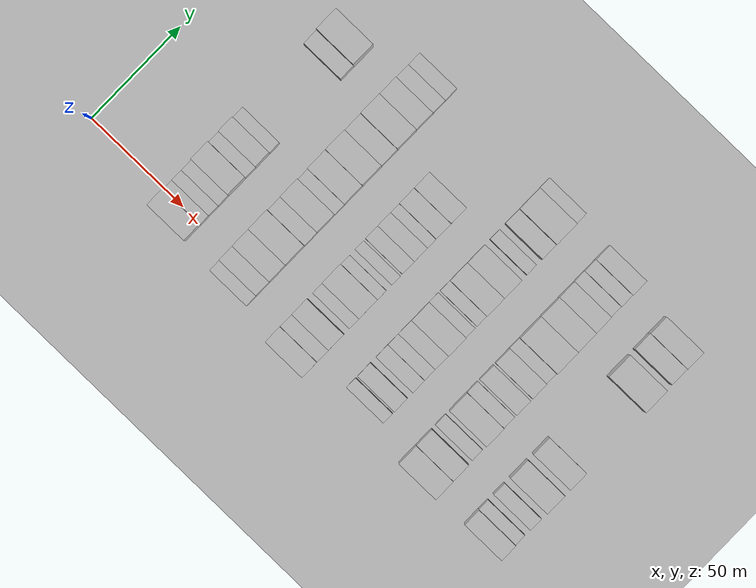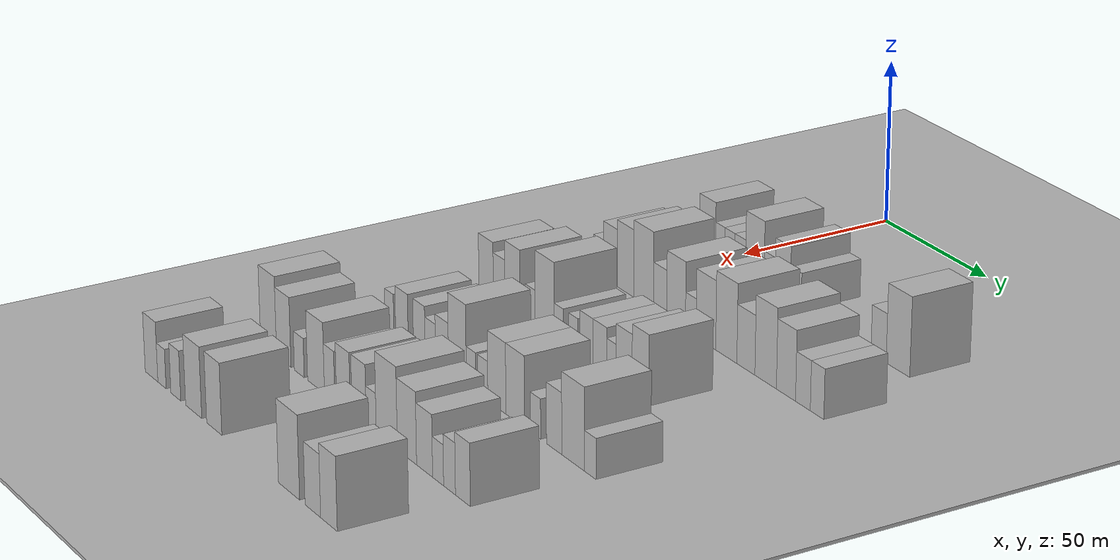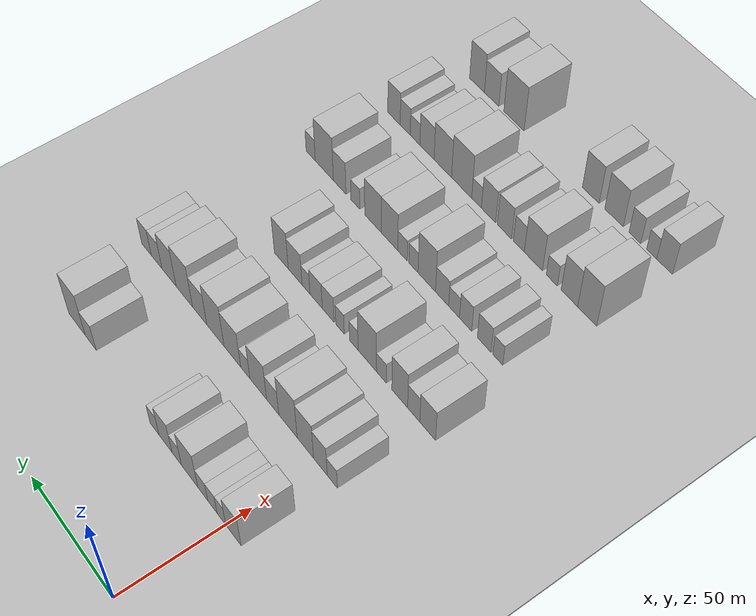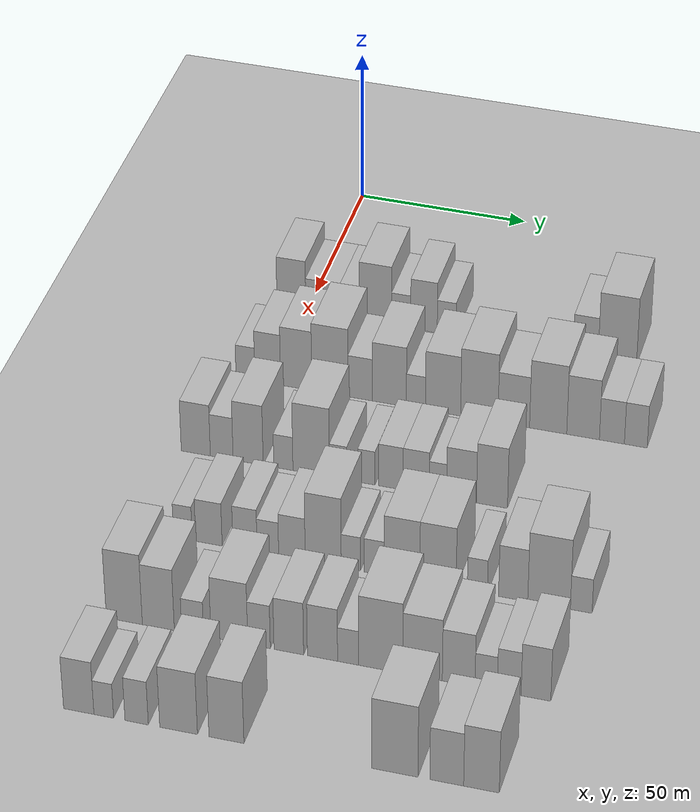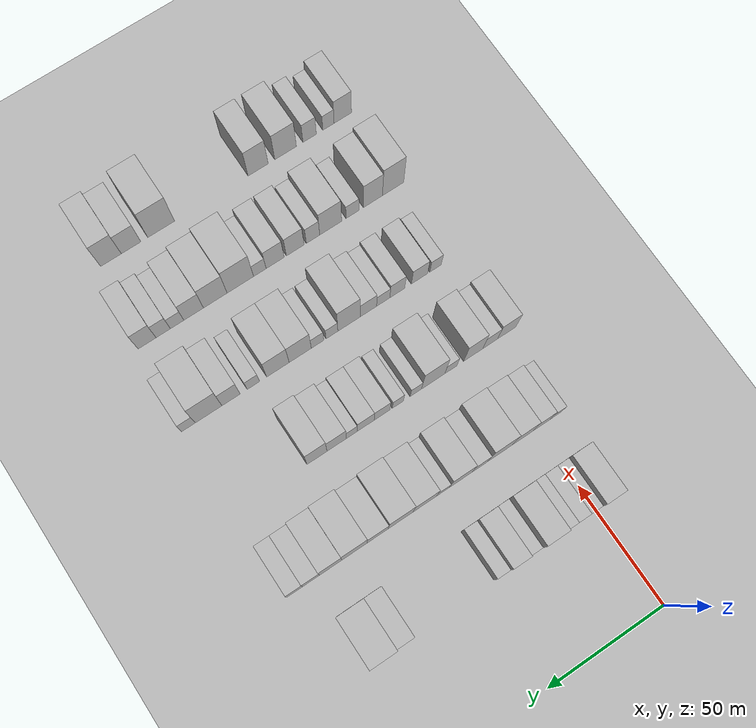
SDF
<sdf version="1.6">
 <world name="default">
  <include><name>ground_plane_1</name><uri>model://HANNAS_ground_plane</uri></include>
  <include>
   <name>ground_plane_2</name>
   <uri>model://HANNAS_ground_plane</uri>
   <pose>100 0 0  0 0 0</pose>
  </include>
  <model name="building_60">
   <static>1</static>
   <pose>50.0000 -4.5406 0 0.000000 0.000000 0.000000</pose>
   <link name="link">
    <pose>0 0 9.00 0 0 0</pose>
    <collision name="collision"><geometry><box><size>20.0000 8.6253 18.0000</size></box></geometry></collision>
    <visual name="visual">
     <cast_shadows>0</cast_shadows>
     <geometry><box><size>20.0000 8.6253 18.0000</size></box></geometry>
     <material>
      <script>
       <uri>model://HANNAS_wall/materials/scripts</uri>
       <uri>model://HANNAS_wall/materials/textures</uri>
       <name>vrc/HANNAS_wall</name>
      </script>
     </material>
    </visual>
   </link>
  </model>
  <model name="building_61">
   <static>1</static>
   <pose>50.0000 2.2006 0 0.000000 0.000000 0.000000</pose>
   <link name="link">
    <pose>0 0 6.00 0 0 0</pose>
    <collision name="collision"><geometry><box><size>20.0000 4.8570 12.0000</size></box></geometry></collision>
    <visual name="visual">
     <cast_shadows>0</cast_shadows>
     <geometry><box><size>20.0000 4.8570 12.0000</size></box></geometry>
     <material>
      <script>
       <uri>model://HANNAS_wall/materials/scripts</uri>
       <uri>model://HANNAS_wall/materials/textures</uri>
       <name>vrc/HANNAS_wall</name>
      </script>
     </material>
    </visual>
   </link>
  </model>
  <model name="building_62">
   <static>1</static>
   <pose>50.0000 7.3138 0 0.000000 0.000000 0.000000</pose>
   <link name="link">
    <pose>0 0 6.00 0 0 0</pose>
    <collision name="collision"><geometry><box><size>20.0000 5.3694 12.0000</size></box></geometry></collision>
    <visual name="visual">
     <cast_shadows>0</cast_shadows>
     <geometry><box><size>20.0000 5.3694 12.0000</size></box></geometry>
     <material>
      <script>
       <uri>model://HANNAS_wall/materials/scripts</uri>
       <uri>model://HANNAS_wall/materials/textures</uri>
       <name>vrc/HANNAS_wall</name>
      </script>
     </material>
    </visual>
   </link>
  </model>
  <model name="building_63">
   <static>1</static>
   <pose>50.0000 12.8486 0 0.000000 0.000000 0.000000</pose>
   <link name="link">
    <pose>0 0 6.00 0 0 0</pose>
    <collision name="collision"><geometry><box><size>20.0000 5.7001 12.0000</size></box></geometry></collision>
    <visual name="visual">
     <cast_shadows>0</cast_shadows>
     <geometry><box><size>20.0000 5.7001 12.0000</size></box></geometry>
     <material>
      <script>
       <uri>model://HANNAS_wall/materials/scripts</uri>
       <uri>model://HANNAS_wall/materials/textures</uri>
       <name>vrc/HANNAS_wall</name>
      </script>
     </material>
    </visual>
   </link>
  </model>
  <model name="building_64">
   <static>1</static>
   <pose>50.0000 20.5025 0 0.000000 0.000000 0.000000</pose>
   <link name="link">
    <pose>0 0 10.50 0 0 0</pose>
    <collision name="collision"><geometry><box><size>20.0000 9.6077 21.0000</size></box></geometry></collision>
    <visual name="visual">
     <cast_shadows>0</cast_shadows>
     <geometry><box><size>20.0000 9.6077 21.0000</size></box></geometry>
     <material>
      <script>
       <uri>model://HANNAS_wall/materials/scripts</uri>
       <uri>model://HANNAS_wall/materials/textures</uri>
       <name>vrc/HANNAS_wall</name>
      </script>
     </material>
    </visual>
   </link>
  </model>
  <model name="building_65">
   <static>1</static>
   <pose>50.0000 28.1299 0 0.000000 0.000000 0.000000</pose>
   <link name="link">
    <pose>0 0 6.00 0 0 0</pose>
    <collision name="collision"><geometry><box><size>20.0000 5.6471 12.0000</size></box></geometry></collision>
    <visual name="visual">
     <cast_shadows>0</cast_shadows>
     <geometry><box><size>20.0000 5.6471 12.0000</size></box></geometry>
     <material>
      <script>
       <uri>model://HANNAS_wall/materials/scripts</uri>
       <uri>model://HANNAS_wall/materials/textures</uri>
       <name>vrc/HANNAS_wall</name>
      </script>
     </material>
    </visual>
   </link>
  </model>
  <model name="building_66">
   <static>1</static>
   <pose>50.0000 34.8647 0 0.000000 0.000000 0.000000</pose>
   <link name="link">
    <pose>0 0 9.00 0 0 0</pose>
    <collision name="collision"><geometry><box><size>20.0000 7.8226 18.0000</size></box></geometry></collision>
    <visual name="visual">
     <cast_shadows>0</cast_shadows>
     <geometry><box><size>20.0000 7.8226 18.0000</size></box></geometry>
     <material>
      <script>
       <uri>model://HANNAS_wall/materials/scripts</uri>
       <uri>model://HANNAS_wall/materials/textures</uri>
       <name>vrc/HANNAS_wall</name>
      </script>
     </material>
    </visual>
   </link>
  </model>
  <model name="building_67">
   <static>1</static>
   <pose>50.0000 41.5274 0 0.000000 0.000000 0.000000</pose>
   <link name="link">
    <pose>0 0 6.00 0 0 0</pose>
    <collision name="collision"><geometry><box><size>20.0000 5.5028 12.0000</size></box></geometry></collision>
    <visual name="visual">
     <cast_shadows>0</cast_shadows>
     <geometry><box><size>20.0000 5.5028 12.0000</size></box></geometry>
     <material>
      <script>
       <uri>model://HANNAS_wall/materials/scripts</uri>
       <uri>model://HANNAS_wall/materials/textures</uri>
       <name>vrc/HANNAS_wall</name>
      </script>
     </material>
    </visual>
   </link>
  </model>
  <model name="building_68">
   <static>1</static>
   <pose>50.0000 82.0958 0 0.000000 0.000000 0.000000</pose>
   <link name="link">
    <pose>0 0 7.50 0 0 0</pose>
    <collision name="collision"><geometry><box><size>20.0000 7.2113 15.0000</size></box></geometry></collision>
    <visual name="visual">
     <cast_shadows>0</cast_shadows>
     <geometry><box><size>20.0000 7.2113 15.0000</size></box></geometry>
     <material>
      <script>
       <uri>model://HANNAS_wall/materials/scripts</uri>
       <uri>model://HANNAS_wall/materials/textures</uri>
       <name>vrc/HANNAS_wall</name>
      </script>
     </material>
    </visual>
   </link>
  </model>
  <model name="building_69">
   <static>1</static>
   <pose>50.0000 91.2356 0 0.000000 0.000000 0.000000</pose>
   <link name="link">
    <pose>0 0 12.00 0 0 0</pose>
    <collision name="collision"><geometry><box><size>20.0000 11.0683 24.0000</size></box></geometry></collision>
    <visual name="visual">
     <cast_shadows>0</cast_shadows>
     <geometry><box><size>20.0000 11.0683 24.0000</size></box></geometry>
     <material>
      <script>
       <uri>model://HANNAS_wall/materials/scripts</uri>
       <uri>model://HANNAS_wall/materials/textures</uri>
       <name>vrc/HANNAS_wall</name>
      </script>
     </material>
    </visual>
   </link>
  </model>
  <model name="building_171">
   <static>1</static>
   <pose>85.0000 -7.6000 0 0.000000 0.000000 0.000000</pose>
   <link name="link">
    <pose>0 0 6.00 0 0 0</pose>
    <collision name="collision"><geometry><box><size>20.0000 5.5117 12.0000</size></box></geometry></collision>
    <visual name="visual">
     <cast_shadows>0</cast_shadows>
     <geometry><box><size>20.0000 5.5117 12.0000</size></box></geometry>
     <material>
      <script>
       <uri>model://HANNAS_wall/materials/scripts</uri>
       <uri>model://HANNAS_wall/materials/textures</uri>
       <name>vrc/HANNAS_wall</name>
      </script>
     </material>
    </visual>
   </link>
  </model>
  <model name="building_172">
   <static>1</static>
   <pose>85.0000 -1.0755 0 0.000000 0.000000 0.000000</pose>
   <link name="link">
    <pose>0 0 9.00 0 0 0</pose>
    <collision name="collision"><geometry><box><size>20.0000 7.5374 18.0000</size></box></geometry></collision>
    <visual name="visual">
     <cast_shadows>0</cast_shadows>
     <geometry><box><size>20.0000 7.5374 18.0000</size></box></geometry>
     <material>
      <script>
       <uri>model://HANNAS_wall/materials/scripts</uri>
       <uri>model://HANNAS_wall/materials/textures</uri>
       <name>vrc/HANNAS_wall</name>
      </script>
     </material>
    </visual>
   </link>
  </model>
  <model name="building_173">
   <static>1</static>
   <pose>85.0000 7.2323 0 0.000000 0.000000 0.000000</pose>
   <link name="link">
    <pose>0 0 10.50 0 0 0</pose>
    <collision name="collision"><geometry><box><size>20.0000 9.0781 21.0000</size></box></geometry></collision>
    <visual name="visual">
     <cast_shadows>0</cast_shadows>
     <geometry><box><size>20.0000 9.0781 21.0000</size></box></geometry>
     <material>
      <script>
       <uri>model://HANNAS_wall/materials/scripts</uri>
       <uri>model://HANNAS_wall/materials/textures</uri>
       <name>vrc/HANNAS_wall</name>
      </script>
     </material>
    </visual>
   </link>
  </model>
  <model name="building_174">
   <static>1</static>
   <pose>85.0000 17.0079 0 0.000000 0.000000 0.000000</pose>
   <link name="link">
    <pose>0 0 12.00 0 0 0</pose>
    <collision name="collision"><geometry><box><size>20.0000 10.4732 24.0000</size></box></geometry></collision>
    <visual name="visual">
     <cast_shadows>0</cast_shadows>
     <geometry><box><size>20.0000 10.4732 24.0000</size></box></geometry>
     <material>
      <script>
       <uri>model://HANNAS_wall/materials/scripts</uri>
       <uri>model://HANNAS_wall/materials/textures</uri>
       <name>vrc/HANNAS_wall</name>
      </script>
     </material>
    </visual>
   </link>
  </model>
  <model name="building_175">
   <static>1</static>
   <pose>85.0000 25.7737 0 0.000000 0.000000 0.000000</pose>
   <link name="link">
    <pose>0 0 7.50 0 0 0</pose>
    <collision name="collision"><geometry><box><size>20.0000 7.0584 15.0000</size></box></geometry></collision>
    <visual name="visual">
     <cast_shadows>0</cast_shadows>
     <geometry><box><size>20.0000 7.0584 15.0000</size></box></geometry>
     <material>
      <script>
       <uri>model://HANNAS_wall/materials/scripts</uri>
       <uri>model://HANNAS_wall/materials/textures</uri>
       <name>vrc/HANNAS_wall</name>
      </script>
     </material>
    </visual>
   </link>
  </model>
  <model name="building_176">
   <static>1</static>
   <pose>85.0000 34.1918 0 0.000000 0.000000 0.000000</pose>
   <link name="link">
    <pose>0 0 10.50 0 0 0</pose>
    <collision name="collision"><geometry><box><size>20.0000 9.7777 21.0000</size></box></geometry></collision>
    <visual name="visual">
     <cast_shadows>0</cast_shadows>
     <geometry><box><size>20.0000 9.7777 21.0000</size></box></geometry>
     <material>
      <script>
       <uri>model://HANNAS_wall/materials/scripts</uri>
       <uri>model://HANNAS_wall/materials/textures</uri>
       <name>vrc/HANNAS_wall</name>
      </script>
     </material>
    </visual>
   </link>
  </model>
  <model name="building_177">
   <static>1</static>
   <pose>85.0000 41.8208 0 0.000000 0.000000 0.000000</pose>
   <link name="link">
    <pose>0 0 6.00 0 0 0</pose>
    <collision name="collision"><geometry><box><size>20.0000 5.4802 12.0000</size></box></geometry></collision>
    <visual name="visual">
     <cast_shadows>0</cast_shadows>
     <geometry><box><size>20.0000 5.4802 12.0000</size></box></geometry>
     <material>
      <script>
       <uri>model://HANNAS_wall/materials/scripts</uri>
       <uri>model://HANNAS_wall/materials/textures</uri>
       <name>vrc/HANNAS_wall</name>
      </script>
     </material>
    </visual>
   </link>
  </model>
  <model name="building_178">
   <static>1</static>
   <pose>85.0000 49.5945 0 0.000000 0.000000 0.000000</pose>
   <link name="link">
    <pose>0 0 10.50 0 0 0</pose>
    <collision name="collision"><geometry><box><size>20.0000 10.0671 21.0000</size></box></geometry></collision>
    <visual name="visual">
     <cast_shadows>0</cast_shadows>
     <geometry><box><size>20.0000 10.0671 21.0000</size></box></geometry>
     <material>
      <script>
       <uri>model://HANNAS_wall/materials/scripts</uri>
       <uri>model://HANNAS_wall/materials/textures</uri>
       <name>vrc/HANNAS_wall</name>
      </script>
     </material>
    </visual>
   </link>
  </model>
  <model name="building_179">
   <static>1</static>
   <pose>85.0000 59.9432 0 0.000000 0.000000 0.000000</pose>
   <link name="link">
    <pose>0 0 12.00 0 0 0</pose>
    <collision name="collision"><geometry><box><size>20.0000 10.6303 24.0000</size></box></geometry></collision>
    <visual name="visual">
     <cast_shadows>0</cast_shadows>
     <geometry><box><size>20.0000 10.6303 24.0000</size></box></geometry>
     <material>
      <script>
       <uri>model://HANNAS_wall/materials/scripts</uri>
       <uri>model://HANNAS_wall/materials/textures</uri>
       <name>vrc/HANNAS_wall</name>
      </script>
     </material>
    </visual>
   </link>
  </model>
  <model name="building_180">
   <static>1</static>
   <pose>85.0000 69.7349 0 0.000000 0.000000 0.000000</pose>
   <link name="link">
    <pose>0 0 9.00 0 0 0</pose>
    <collision name="collision"><geometry><box><size>20.0000 8.9531 18.0000</size></box></geometry></collision>
    <visual name="visual">
     <cast_shadows>0</cast_shadows>
     <geometry><box><size>20.0000 8.9531 18.0000</size></box></geometry>
     <material>
      <script>
       <uri>model://HANNAS_wall/materials/scripts</uri>
       <uri>model://HANNAS_wall/materials/textures</uri>
       <name>vrc/HANNAS_wall</name>
      </script>
     </material>
    </visual>
   </link>
  </model>
  <model name="building_181">
   <static>1</static>
   <pose>85.0000 79.4633 0 0.000000 0.000000 0.000000</pose>
   <link name="link">
    <pose>0 0 12.00 0 0 0</pose>
    <collision name="collision"><geometry><box><size>20.0000 10.5037 24.0000</size></box></geometry></collision>
    <visual name="visual">
     <cast_shadows>0</cast_shadows>
     <geometry><box><size>20.0000 10.5037 24.0000</size></box></geometry>
     <material>
      <script>
       <uri>model://HANNAS_wall/materials/scripts</uri>
       <uri>model://HANNAS_wall/materials/textures</uri>
       <name>vrc/HANNAS_wall</name>
      </script>
     </material>
    </visual>
   </link>
  </model>
  <model name="building_182">
   <static>1</static>
   <pose>85.0000 89.3109 0 0.000000 0.000000 0.000000</pose>
   <link name="link">
    <pose>0 0 10.50 0 0 0</pose>
    <collision name="collision"><geometry><box><size>20.0000 9.1914 21.0000</size></box></geometry></collision>
    <visual name="visual">
     <cast_shadows>0</cast_shadows>
     <geometry><box><size>20.0000 9.1914 21.0000</size></box></geometry>
     <material>
      <script>
       <uri>model://HANNAS_wall/materials/scripts</uri>
       <uri>model://HANNAS_wall/materials/textures</uri>
       <name>vrc/HANNAS_wall</name>
      </script>
     </material>
    </visual>
   </link>
  </model>
  <model name="building_183">
   <static>1</static>
   <pose>85.0000 97.4133 0 0.000000 0.000000 0.000000</pose>
   <link name="link">
    <pose>0 0 7.50 0 0 0</pose>
    <collision name="collision"><geometry><box><size>20.0000 7.0134 15.0000</size></box></geometry></collision>
    <visual name="visual">
     <cast_shadows>0</cast_shadows>
     <geometry><box><size>20.0000 7.0134 15.0000</size></box></geometry>
     <material>
      <script>
       <uri>model://HANNAS_wall/materials/scripts</uri>
       <uri>model://HANNAS_wall/materials/textures</uri>
       <name>vrc/HANNAS_wall</name>
      </script>
     </material>
    </visual>
   </link>
  </model>
  <model name="building_184">
   <static>1</static>
   <pose>85.0000 104.1067 0 0.000000 0.000000 0.000000</pose>
   <link name="link">
    <pose>0 0 7.50 0 0 0</pose>
    <collision name="collision"><geometry><box><size>20.0000 6.3736 15.0000</size></box></geometry></collision>
    <visual name="visual">
     <cast_shadows>0</cast_shadows>
     <geometry><box><size>20.0000 6.3736 15.0000</size></box></geometry>
     <material>
      <script>
       <uri>model://HANNAS_wall/materials/scripts</uri>
       <uri>model://HANNAS_wall/materials/textures</uri>
       <name>vrc/HANNAS_wall</name>
      </script>
     </material>
    </visual>
   </link>
  </model>
  <model name="building_302">
   <static>1</static>
   <pose>120.0000 -11.0128 0 0.000000 0.000000 0.000000</pose>
   <link name="link">
    <pose>0 0 9.00 0 0 0</pose>
    <collision name="collision"><geometry><box><size>20.0000 8.3290 18.0000</size></box></geometry></collision>
    <visual name="visual">
     <cast_shadows>0</cast_shadows>
     <geometry><box><size>20.0000 8.3290 18.0000</size></box></geometry>
     <material>
      <script>
       <uri>model://HANNAS_wall/materials/scripts</uri>
       <uri>model://HANNAS_wall/materials/textures</uri>
       <name>vrc/HANNAS_wall</name>
      </script>
     </material>
    </visual>
   </link>
  </model>
  <model name="building_303">
   <static>1</static>
   <pose>120.0000 -3.5951 0 0.000000 0.000000 0.000000</pose>
   <link name="link">
    <pose>0 0 7.50 0 0 0</pose>
    <collision name="collision"><geometry><box><size>20.0000 6.5063 15.0000</size></box></geometry></collision>
    <visual name="visual">
     <cast_shadows>0</cast_shadows>
     <geometry><box><size>20.0000 6.5063 15.0000</size></box></geometry>
     <material>
      <script>
       <uri>model://HANNAS_wall/materials/scripts</uri>
       <uri>model://HANNAS_wall/materials/textures</uri>
       <name>vrc/HANNAS_wall</name>
      </script>
     </material>
    </visual>
   </link>
  </model>
  <model name="building_304">
   <static>1</static>
   <pose>120.0000 3.9311 0 0.000000 0.000000 0.000000</pose>
   <link name="link">
    <pose>0 0 10.50 0 0 0</pose>
    <collision name="collision"><geometry><box><size>20.0000 8.5460 21.0000</size></box></geometry></collision>
    <visual name="visual">
     <cast_shadows>0</cast_shadows>
     <geometry><box><size>20.0000 8.5460 21.0000</size></box></geometry>
     <material>
      <script>
       <uri>model://HANNAS_wall/materials/scripts</uri>
       <uri>model://HANNAS_wall/materials/textures</uri>
       <name>vrc/HANNAS_wall</name>
      </script>
     </material>
    </visual>
   </link>
  </model>
  <model name="building_305">
   <static>1</static>
   <pose>120.0000 13.9173 0 0.000000 0.000000 0.000000</pose>
   <link name="link">
    <pose>0 0 6.00 0 0 0</pose>
    <collision name="collision"><geometry><box><size>20.0000 5.4265 12.0000</size></box></geometry></collision>
    <visual name="visual">
     <cast_shadows>0</cast_shadows>
     <geometry><box><size>20.0000 5.4265 12.0000</size></box></geometry>
     <material>
      <script>
       <uri>model://HANNAS_wall/materials/scripts</uri>
       <uri>model://HANNAS_wall/materials/textures</uri>
       <name>vrc/HANNAS_wall</name>
      </script>
     </material>
    </visual>
   </link>
  </model>
  <model name="building_306">
   <static>1</static>
   <pose>120.0000 21.7976 0 0.000000 0.000000 0.000000</pose>
   <link name="link">
    <pose>0 0 12.00 0 0 0</pose>
    <collision name="collision"><geometry><box><size>20.0000 10.3341 24.0000</size></box></geometry></collision>
    <visual name="visual">
     <cast_shadows>0</cast_shadows>
     <geometry><box><size>20.0000 10.3341 24.0000</size></box></geometry>
     <material>
      <script>
       <uri>model://HANNAS_wall/materials/scripts</uri>
       <uri>model://HANNAS_wall/materials/textures</uri>
       <name>vrc/HANNAS_wall</name>
      </script>
     </material>
    </visual>
   </link>
  </model>
  <model name="building_307">
   <static>1</static>
   <pose>120.0000 29.4166 0 0.000000 0.000000 0.000000</pose>
   <link name="link">
    <pose>0 0 6.00 0 0 0</pose>
    <collision name="collision"><geometry><box><size>20.0000 4.9039 12.0000</size></box></geometry></collision>
    <visual name="visual">
     <cast_shadows>0</cast_shadows>
     <geometry><box><size>20.0000 4.9039 12.0000</size></box></geometry>
     <material>
      <script>
       <uri>model://HANNAS_wall/materials/scripts</uri>
       <uri>model://HANNAS_wall/materials/textures</uri>
       <name>vrc/HANNAS_wall</name>
      </script>
     </material>
    </visual>
   </link>
  </model>
  <model name="building_308">
   <static>1</static>
   <pose>120.0000 37.3076 0 0.000000 0.000000 0.000000</pose>
   <link name="link">
    <pose>0 0 6.00 0 0 0</pose>
    <collision name="collision"><geometry><box><size>20.0000 4.8781 12.0000</size></box></geometry></collision>
    <visual name="visual">
     <cast_shadows>0</cast_shadows>
     <geometry><box><size>20.0000 4.8781 12.0000</size></box></geometry>
     <material>
      <script>
       <uri>model://HANNAS_wall/materials/scripts</uri>
       <uri>model://HANNAS_wall/materials/textures</uri>
       <name>vrc/HANNAS_wall</name>
      </script>
     </material>
    </visual>
   </link>
  </model>
  <model name="building_309">
   <static>1</static>
   <pose>120.0000 44.1707 0 0.000000 0.000000 0.000000</pose>
   <link name="link">
    <pose>0 0 7.50 0 0 0</pose>
    <collision name="collision"><geometry><box><size>20.0000 6.8480 15.0000</size></box></geometry></collision>
    <visual name="visual">
     <cast_shadows>0</cast_shadows>
     <geometry><box><size>20.0000 6.8480 15.0000</size></box></geometry>
     <material>
      <script>
       <uri>model://HANNAS_wall/materials/scripts</uri>
       <uri>model://HANNAS_wall/materials/textures</uri>
       <name>vrc/HANNAS_wall</name>
      </script>
     </material>
    </visual>
   </link>
  </model>
  <model name="building_310">
   <static>1</static>
   <pose>120.0000 51.2324 0 0.000000 0.000000 0.000000</pose>
   <link name="link">
    <pose>0 0 7.50 0 0 0</pose>
    <collision name="collision"><geometry><box><size>20.0000 7.2754 15.0000</size></box></geometry></collision>
    <visual name="visual">
     <cast_shadows>0</cast_shadows>
     <geometry><box><size>20.0000 7.2754 15.0000</size></box></geometry>
     <material>
      <script>
       <uri>model://HANNAS_wall/materials/scripts</uri>
       <uri>model://HANNAS_wall/materials/textures</uri>
       <name>vrc/HANNAS_wall</name>
      </script>
     </material>
    </visual>
   </link>
  </model>
  <model name="building_311">
   <static>1</static>
   <pose>120.0000 57.2797 0 0.000000 0.000000 0.000000</pose>
   <link name="link">
    <pose>0 0 6.00 0 0 0</pose>
    <collision name="collision"><geometry><box><size>20.0000 4.8192 12.0000</size></box></geometry></collision>
    <visual name="visual">
     <cast_shadows>0</cast_shadows>
     <geometry><box><size>20.0000 4.8192 12.0000</size></box></geometry>
     <material>
      <script>
       <uri>model://HANNAS_wall/materials/scripts</uri>
       <uri>model://HANNAS_wall/materials/textures</uri>
       <name>vrc/HANNAS_wall</name>
      </script>
     </material>
    </visual>
   </link>
  </model>
  <model name="building_312">
   <static>1</static>
   <pose>120.0000 63.8253 0 0.000000 0.000000 0.000000</pose>
   <link name="link">
    <pose>0 0 9.00 0 0 0</pose>
    <collision name="collision"><geometry><box><size>20.0000 8.2720 18.0000</size></box></geometry></collision>
    <visual name="visual">
     <cast_shadows>0</cast_shadows>
     <geometry><box><size>20.0000 8.2720 18.0000</size></box></geometry>
     <material>
      <script>
       <uri>model://HANNAS_wall/materials/scripts</uri>
       <uri>model://HANNAS_wall/materials/textures</uri>
       <name>vrc/HANNAS_wall</name>
      </script>
     </material>
    </visual>
   </link>
  </model>
  <model name="building_313">
   <static>1</static>
   <pose>120.0000 72.2399 0 0.000000 0.000000 0.000000</pose>
   <link name="link">
    <pose>0 0 10.50 0 0 0</pose>
    <collision name="collision"><geometry><box><size>20.0000 8.5573 21.0000</size></box></geometry></collision>
    <visual name="visual">
     <cast_shadows>0</cast_shadows>
     <geometry><box><size>20.0000 8.5573 21.0000</size></box></geometry>
     <material>
      <script>
       <uri>model://HANNAS_wall/materials/scripts</uri>
       <uri>model://HANNAS_wall/materials/textures</uri>
       <name>vrc/HANNAS_wall</name>
      </script>
     </material>
    </visual>
   </link>
  </model>
  <model name="building_426">
   <static>1</static>
   <pose>155.0000 -3.4402 0 0.000000 0.000000 0.000000</pose>
   <link name="link">
    <pose>0 0 6.00 0 0 0</pose>
    <collision name="collision"><geometry><box><size>20.0000 5.1885 12.0000</size></box></geometry></collision>
    <visual name="visual">
     <cast_shadows>0</cast_shadows>
     <geometry><box><size>20.0000 5.1885 12.0000</size></box></geometry>
     <material>
      <script>
       <uri>model://HANNAS_wall/materials/scripts</uri>
       <uri>model://HANNAS_wall/materials/textures</uri>
       <name>vrc/HANNAS_wall</name>
      </script>
     </material>
    </visual>
   </link>
  </model>
  <model name="building_427">
   <static>1</static>
   <pose>155.0000 3.8101 0 0.000000 0.000000 0.000000</pose>
   <link name="link">
    <pose>0 0 7.50 0 0 0</pose>
    <collision name="collision"><geometry><box><size>20.0000 7.3122 15.0000</size></box></geometry></collision>
    <visual name="visual">
     <cast_shadows>0</cast_shadows>
     <geometry><box><size>20.0000 7.3122 15.0000</size></box></geometry>
     <material>
      <script>
       <uri>model://HANNAS_wall/materials/scripts</uri>
       <uri>model://HANNAS_wall/materials/textures</uri>
       <name>vrc/HANNAS_wall</name>
      </script>
     </material>
    </visual>
   </link>
  </model>
  <model name="building_428">
   <static>1</static>
   <pose>155.0000 13.7993 0 0.000000 0.000000 0.000000</pose>
   <link name="link">
    <pose>0 0 7.50 0 0 0</pose>
    <collision name="collision"><geometry><box><size>20.0000 6.6662 15.0000</size></box></geometry></collision>
    <visual name="visual">
     <cast_shadows>0</cast_shadows>
     <geometry><box><size>20.0000 6.6662 15.0000</size></box></geometry>
     <material>
      <script>
       <uri>model://HANNAS_wall/materials/scripts</uri>
       <uri>model://HANNAS_wall/materials/textures</uri>
       <name>vrc/HANNAS_wall</name>
      </script>
     </material>
    </visual>
   </link>
  </model>
  <model name="building_429">
   <static>1</static>
   <pose>155.0000 20.0956 0 0.000000 0.000000 0.000000</pose>
   <link name="link">
    <pose>0 0 6.00 0 0 0</pose>
    <collision name="collision"><geometry><box><size>20.0000 5.9265 12.0000</size></box></geometry></collision>
    <visual name="visual">
     <cast_shadows>0</cast_shadows>
     <geometry><box><size>20.0000 5.9265 12.0000</size></box></geometry>
     <material>
      <script>
       <uri>model://HANNAS_wall/materials/scripts</uri>
       <uri>model://HANNAS_wall/materials/textures</uri>
       <name>vrc/HANNAS_wall</name>
      </script>
     </material>
    </visual>
   </link>
  </model>
  <model name="building_430">
   <static>1</static>
   <pose>155.0000 26.7071 0 0.000000 0.000000 0.000000</pose>
   <link name="link">
    <pose>0 0 7.50 0 0 0</pose>
    <collision name="collision"><geometry><box><size>20.0000 7.2965 15.0000</size></box></geometry></collision>
    <visual name="visual">
     <cast_shadows>0</cast_shadows>
     <geometry><box><size>20.0000 7.2965 15.0000</size></box></geometry>
     <material>
      <script>
       <uri>model://HANNAS_wall/materials/scripts</uri>
       <uri>model://HANNAS_wall/materials/textures</uri>
       <name>vrc/HANNAS_wall</name>
      </script>
     </material>
    </visual>
   </link>
  </model>
  <model name="building_431">
   <static>1</static>
   <pose>155.0000 35.2827 0 0.000000 0.000000 0.000000</pose>
   <link name="link">
    <pose>0 0 12.00 0 0 0</pose>
    <collision name="collision"><geometry><box><size>20.0000 9.8547 24.0000</size></box></geometry></collision>
    <visual name="visual">
     <cast_shadows>0</cast_shadows>
     <geometry><box><size>20.0000 9.8547 24.0000</size></box></geometry>
     <material>
      <script>
       <uri>model://HANNAS_wall/materials/scripts</uri>
       <uri>model://HANNAS_wall/materials/textures</uri>
       <name>vrc/HANNAS_wall</name>
      </script>
     </material>
    </visual>
   </link>
  </model>
  <model name="building_432">
   <static>1</static>
   <pose>155.0000 42.8064 0 0.000000 0.000000 0.000000</pose>
   <link name="link">
    <pose>0 0 6.00 0 0 0</pose>
    <collision name="collision"><geometry><box><size>20.0000 5.1926 12.0000</size></box></geometry></collision>
    <visual name="visual">
     <cast_shadows>0</cast_shadows>
     <geometry><box><size>20.0000 5.1926 12.0000</size></box></geometry>
     <material>
      <script>
       <uri>model://HANNAS_wall/materials/scripts</uri>
       <uri>model://HANNAS_wall/materials/textures</uri>
       <name>vrc/HANNAS_wall</name>
      </script>
     </material>
    </visual>
   </link>
  </model>
  <model name="building_433">
   <static>1</static>
   <pose>155.0000 49.1342 0 0.000000 0.000000 0.000000</pose>
   <link name="link">
    <pose>0 0 6.00 0 0 0</pose>
    <collision name="collision"><geometry><box><size>20.0000 5.4630 12.0000</size></box></geometry></collision>
    <visual name="visual">
     <cast_shadows>0</cast_shadows>
     <geometry><box><size>20.0000 5.4630 12.0000</size></box></geometry>
     <material>
      <script>
       <uri>model://HANNAS_wall/materials/scripts</uri>
       <uri>model://HANNAS_wall/materials/textures</uri>
       <name>vrc/HANNAS_wall</name>
      </script>
     </material>
    </visual>
   </link>
  </model>
  <model name="building_434">
   <static>1</static>
   <pose>155.0000 56.7026 0 0.000000 0.000000 0.000000</pose>
   <link name="link">
    <pose>0 0 10.50 0 0 0</pose>
    <collision name="collision"><geometry><box><size>20.0000 9.6738 21.0000</size></box></geometry></collision>
    <visual name="visual">
     <cast_shadows>0</cast_shadows>
     <geometry><box><size>20.0000 9.6738 21.0000</size></box></geometry>
     <material>
      <script>
       <uri>model://HANNAS_wall/materials/scripts</uri>
       <uri>model://HANNAS_wall/materials/textures</uri>
       <name>vrc/HANNAS_wall</name>
      </script>
     </material>
    </visual>
   </link>
  </model>
  <model name="building_435">
   <static>1</static>
   <pose>155.0000 66.4243 0 0.000000 0.000000 0.000000</pose>
   <link name="link">
    <pose>0 0 10.50 0 0 0</pose>
    <collision name="collision"><geometry><box><size>20.0000 9.7696 21.0000</size></box></geometry></collision>
    <visual name="visual">
     <cast_shadows>0</cast_shadows>
     <geometry><box><size>20.0000 9.7696 21.0000</size></box></geometry>
     <material>
      <script>
       <uri>model://HANNAS_wall/materials/scripts</uri>
       <uri>model://HANNAS_wall/materials/textures</uri>
       <name>vrc/HANNAS_wall</name>
      </script>
     </material>
    </visual>
   </link>
  </model>
  <model name="building_436">
   <static>1</static>
   <pose>155.0000 77.0083 0 0.000000 0.000000 0.000000</pose>
   <link name="link">
    <pose>0 0 6.00 0 0 0</pose>
    <collision name="collision"><geometry><box><size>20.0000 5.3985 12.0000</size></box></geometry></collision>
    <visual name="visual">
     <cast_shadows>0</cast_shadows>
     <geometry><box><size>20.0000 5.3985 12.0000</size></box></geometry>
     <material>
      <script>
       <uri>model://HANNAS_wall/materials/scripts</uri>
       <uri>model://HANNAS_wall/materials/textures</uri>
       <name>vrc/HANNAS_wall</name>
      </script>
     </material>
    </visual>
   </link>
  </model>
  <model name="building_437">
   <static>1</static>
   <pose>155.0000 86.6088 0 0.000000 0.000000 0.000000</pose>
   <link name="link">
    <pose>0 0 9.00 0 0 0</pose>
    <collision name="collision"><geometry><box><size>20.0000 7.8026 18.0000</size></box></geometry></collision>
    <visual name="visual">
     <cast_shadows>0</cast_shadows>
     <geometry><box><size>20.0000 7.8026 18.0000</size></box></geometry>
     <material>
      <script>
       <uri>model://HANNAS_wall/materials/scripts</uri>
       <uri>model://HANNAS_wall/materials/textures</uri>
       <name>vrc/HANNAS_wall</name>
      </script>
     </material>
    </visual>
   </link>
  </model>
  <model name="building_438">
   <static>1</static>
   <pose>155.0000 96.1742 0 0.000000 0.000000 0.000000</pose>
   <link name="link">
    <pose>0 0 12.00 0 0 0</pose>
    <collision name="collision"><geometry><box><size>20.0000 11.3283 24.0000</size></box></geometry></collision>
    <visual name="visual">
     <cast_shadows>0</cast_shadows>
     <geometry><box><size>20.0000 11.3283 24.0000</size></box></geometry>
     <material>
      <script>
       <uri>model://HANNAS_wall/materials/scripts</uri>
       <uri>model://HANNAS_wall/materials/textures</uri>
       <name>vrc/HANNAS_wall</name>
      </script>
     </material>
    </visual>
   </link>
  </model>
  <model name="building_439">
   <static>1</static>
   <pose>155.0000 104.7291 0 0.000000 0.000000 0.000000</pose>
   <link name="link">
    <pose>0 0 6.00 0 0 0</pose>
    <collision name="collision"><geometry><box><size>20.0000 5.7815 12.0000</size></box></geometry></collision>
    <visual name="visual">
     <cast_shadows>0</cast_shadows>
     <geometry><box><size>20.0000 5.7815 12.0000</size></box></geometry>
     <material>
      <script>
       <uri>model://HANNAS_wall/materials/scripts</uri>
       <uri>model://HANNAS_wall/materials/textures</uri>
       <name>vrc/HANNAS_wall</name>
      </script>
     </material>
    </visual>
   </link>
  </model>
  <model name="building_545">
   <static>1</static>
   <pose>190.0000 -7.9953 0 0.000000 0.000000 0.000000</pose>
   <link name="link">
    <pose>0 0 12.00 0 0 0</pose>
    <collision name="collision"><geometry><box><size>20.0000 9.7707 24.0000</size></box></geometry></collision>
    <visual name="visual">
     <cast_shadows>0</cast_shadows>
     <geometry><box><size>20.0000 9.7707 24.0000</size></box></geometry>
     <material>
      <script>
       <uri>model://HANNAS_wall/materials/scripts</uri>
       <uri>model://HANNAS_wall/materials/textures</uri>
       <name>vrc/HANNAS_wall</name>
      </script>
     </material>
    </visual>
   </link>
  </model>
  <model name="building_546">
   <static>1</static>
   <pose>190.0000 1.2160 0 0.000000 0.000000 0.000000</pose>
   <link name="link">
    <pose>0 0 10.50 0 0 0</pose>
    <collision name="collision"><geometry><box><size>20.0000 8.6520 21.0000</size></box></geometry></collision>
    <visual name="visual">
     <cast_shadows>0</cast_shadows>
     <geometry><box><size>20.0000 8.6520 21.0000</size></box></geometry>
     <material>
      <script>
       <uri>model://HANNAS_wall/materials/scripts</uri>
       <uri>model://HANNAS_wall/materials/textures</uri>
       <name>vrc/HANNAS_wall</name>
      </script>
     </material>
    </visual>
   </link>
  </model>
  <model name="building_547">
   <static>1</static>
   <pose>190.0000 10.4803 0 0.000000 0.000000 0.000000</pose>
   <link name="link">
    <pose>0 0 6.00 0 0 0</pose>
    <collision name="collision"><geometry><box><size>20.0000 5.8766 12.0000</size></box></geometry></collision>
    <visual name="visual">
     <cast_shadows>0</cast_shadows>
     <geometry><box><size>20.0000 5.8766 12.0000</size></box></geometry>
     <material>
      <script>
       <uri>model://HANNAS_wall/materials/scripts</uri>
       <uri>model://HANNAS_wall/materials/textures</uri>
       <name>vrc/HANNAS_wall</name>
      </script>
     </material>
    </visual>
   </link>
  </model>
  <model name="building_548">
   <static>1</static>
   <pose>190.0000 20.3539 0 0.000000 0.000000 0.000000</pose>
   <link name="link">
    <pose>0 0 10.50 0 0 0</pose>
    <collision name="collision"><geometry><box><size>20.0000 9.8705 21.0000</size></box></geometry></collision>
    <visual name="visual">
     <cast_shadows>0</cast_shadows>
     <geometry><box><size>20.0000 9.8705 21.0000</size></box></geometry>
     <material>
      <script>
       <uri>model://HANNAS_wall/materials/scripts</uri>
       <uri>model://HANNAS_wall/materials/textures</uri>
       <name>vrc/HANNAS_wall</name>
      </script>
     </material>
    </visual>
   </link>
  </model>
  <model name="building_549">
   <static>1</static>
   <pose>190.0000 28.2946 0 0.000000 0.000000 0.000000</pose>
   <link name="link">
    <pose>0 0 7.50 0 0 0</pose>
    <collision name="collision"><geometry><box><size>20.0000 6.0109 15.0000</size></box></geometry></collision>
    <visual name="visual">
     <cast_shadows>0</cast_shadows>
     <geometry><box><size>20.0000 6.0109 15.0000</size></box></geometry>
     <material>
      <script>
       <uri>model://HANNAS_wall/materials/scripts</uri>
       <uri>model://HANNAS_wall/materials/textures</uri>
       <name>vrc/HANNAS_wall</name>
      </script>
     </material>
    </visual>
   </link>
  </model>
  <model name="building_550">
   <static>1</static>
   <pose>190.0000 36.2366 0 0.000000 0.000000 0.000000</pose>
   <link name="link">
    <pose>0 0 9.00 0 0 0</pose>
    <collision name="collision"><geometry><box><size>20.0000 7.8731 18.0000</size></box></geometry></collision>
    <visual name="visual">
     <cast_shadows>0</cast_shadows>
     <geometry><box><size>20.0000 7.8731 18.0000</size></box></geometry>
     <material>
      <script>
       <uri>model://HANNAS_wall/materials/scripts</uri>
       <uri>model://HANNAS_wall/materials/textures</uri>
       <name>vrc/HANNAS_wall</name>
      </script>
     </material>
    </visual>
   </link>
  </model>
  <model name="building_551">
   <static>1</static>
   <pose>190.0000 45.1721 0 0.000000 0.000000 0.000000</pose>
   <link name="link">
    <pose>0 0 9.00 0 0 0</pose>
    <collision name="collision"><geometry><box><size>20.0000 7.9979 18.0000</size></box></geometry></collision>
    <visual name="visual">
     <cast_shadows>0</cast_shadows>
     <geometry><box><size>20.0000 7.9979 18.0000</size></box></geometry>
     <material>
      <script>
       <uri>model://HANNAS_wall/materials/scripts</uri>
       <uri>model://HANNAS_wall/materials/textures</uri>
       <name>vrc/HANNAS_wall</name>
      </script>
     </material>
    </visual>
   </link>
  </model>
  <model name="building_552">
   <static>1</static>
   <pose>190.0000 51.9451 0 0.000000 0.000000 0.000000</pose>
   <link name="link">
    <pose>0 0 6.00 0 0 0</pose>
    <collision name="collision"><geometry><box><size>20.0000 5.5479 12.0000</size></box></geometry></collision>
    <visual name="visual">
     <cast_shadows>0</cast_shadows>
     <geometry><box><size>20.0000 5.5479 12.0000</size></box></geometry>
     <material>
      <script>
       <uri>model://HANNAS_wall/materials/scripts</uri>
       <uri>model://HANNAS_wall/materials/textures</uri>
       <name>vrc/HANNAS_wall</name>
      </script>
     </material>
    </visual>
   </link>
  </model>
  <model name="building_553">
   <static>1</static>
   <pose>190.0000 60.5335 0 0.000000 0.000000 0.000000</pose>
   <link name="link">
    <pose>0 0 12.00 0 0 0</pose>
    <collision name="collision"><geometry><box><size>20.0000 11.6290 24.0000</size></box></geometry></collision>
    <visual name="visual">
     <cast_shadows>0</cast_shadows>
     <geometry><box><size>20.0000 11.6290 24.0000</size></box></geometry>
     <material>
      <script>
       <uri>model://HANNAS_wall/materials/scripts</uri>
       <uri>model://HANNAS_wall/materials/textures</uri>
       <name>vrc/HANNAS_wall</name>
      </script>
     </material>
    </visual>
   </link>
  </model>
  <model name="building_554">
   <static>1</static>
   <pose>190.0000 71.5232 0 0.000000 0.000000 0.000000</pose>
   <link name="link">
    <pose>0 0 10.50 0 0 0</pose>
    <collision name="collision"><geometry><box><size>20.0000 10.3504 21.0000</size></box></geometry></collision>
    <visual name="visual">
     <cast_shadows>0</cast_shadows>
     <geometry><box><size>20.0000 10.3504 21.0000</size></box></geometry>
     <material>
      <script>
       <uri>model://HANNAS_wall/materials/scripts</uri>
       <uri>model://HANNAS_wall/materials/textures</uri>
       <name>vrc/HANNAS_wall</name>
      </script>
     </material>
    </visual>
   </link>
  </model>
  <model name="building_555">
   <static>1</static>
   <pose>190.0000 80.9605 0 0.000000 0.000000 0.000000</pose>
   <link name="link">
    <pose>0 0 9.00 0 0 0</pose>
    <collision name="collision"><geometry><box><size>20.0000 8.5243 18.0000</size></box></geometry></collision>
    <visual name="visual">
     <cast_shadows>0</cast_shadows>
     <geometry><box><size>20.0000 8.5243 18.0000</size></box></geometry>
     <material>
      <script>
       <uri>model://HANNAS_wall/materials/scripts</uri>
       <uri>model://HANNAS_wall/materials/textures</uri>
       <name>vrc/HANNAS_wall</name>
      </script>
     </material>
    </visual>
   </link>
  </model>
  <model name="building_556">
   <static>1</static>
   <pose>190.0000 88.1195 0 0.000000 0.000000 0.000000</pose>
   <link name="link">
    <pose>0 0 6.00 0 0 0</pose>
    <collision name="collision"><geometry><box><size>20.0000 5.7937 12.0000</size></box></geometry></collision>
    <visual name="visual">
     <cast_shadows>0</cast_shadows>
     <geometry><box><size>20.0000 5.7937 12.0000</size></box></geometry>
     <material>
      <script>
       <uri>model://HANNAS_wall/materials/scripts</uri>
       <uri>model://HANNAS_wall/materials/textures</uri>
       <name>vrc/HANNAS_wall</name>
      </script>
     </material>
    </visual>
   </link>
  </model>
  <model name="building_557">
   <static>1</static>
   <pose>190.0000 94.0982 0 0.000000 0.000000 0.000000</pose>
   <link name="link">
    <pose>0 0 7.50 0 0 0</pose>
    <collision name="collision"><geometry><box><size>20.0000 6.1637 15.0000</size></box></geometry></collision>
    <visual name="visual">
     <cast_shadows>0</cast_shadows>
     <geometry><box><size>20.0000 6.1637 15.0000</size></box></geometry>
     <material>
      <script>
       <uri>model://HANNAS_wall/materials/scripts</uri>
       <uri>model://HANNAS_wall/materials/textures</uri>
       <name>vrc/HANNAS_wall</name>
      </script>
     </material>
    </visual>
   </link>
  </model>
  <model name="building_558">
   <static>1</static>
   <pose>190.0000 101.0155 0 0.000000 0.000000 0.000000</pose>
   <link name="link">
    <pose>0 0 9.00 0 0 0</pose>
    <collision name="collision"><geometry><box><size>20.0000 7.6709 18.0000</size></box></geometry></collision>
    <visual name="visual">
     <cast_shadows>0</cast_shadows>
     <geometry><box><size>20.0000 7.6709 18.0000</size></box></geometry>
     <material>
      <script>
       <uri>model://HANNAS_wall/materials/scripts</uri>
       <uri>model://HANNAS_wall/materials/textures</uri>
       <name>vrc/HANNAS_wall</name>
      </script>
     </material>
    </visual>
   </link>
  </model>
  <model name="building_673">
   <static>1</static>
   <pose>225.0000 -8.2386 0 0.000000 0.000000 0.000000</pose>
   <link name="link">
    <pose>0 0 9.00 0 0 0</pose>
    <collision name="collision"><geometry><box><size>20.0000 8.0271 18.0000</size></box></geometry></collision>
    <visual name="visual">
     <cast_shadows>0</cast_shadows>
     <geometry><box><size>20.0000 8.0271 18.0000</size></box></geometry>
     <material>
      <script>
       <uri>model://HANNAS_wall/materials/scripts</uri>
       <uri>model://HANNAS_wall/materials/textures</uri>
       <name>vrc/HANNAS_wall</name>
      </script>
     </material>
    </visual>
   </link>
  </model>
  <model name="building_674">
   <static>1</static>
   <pose>225.0000 -1.6332 0 0.000000 0.000000 0.000000</pose>
   <link name="link">
    <pose>0 0 6.00 0 0 0</pose>
    <collision name="collision"><geometry><box><size>20.0000 5.1836 12.0000</size></box></geometry></collision>
    <visual name="visual">
     <cast_shadows>0</cast_shadows>
     <geometry><box><size>20.0000 5.1836 12.0000</size></box></geometry>
     <material>
      <script>
       <uri>model://HANNAS_wall/materials/scripts</uri>
       <uri>model://HANNAS_wall/materials/textures</uri>
       <name>vrc/HANNAS_wall</name>
      </script>
     </material>
    </visual>
   </link>
  </model>
  <model name="building_675">
   <static>1</static>
   <pose>225.0000 7.0222 0 0.000000 0.000000 0.000000</pose>
   <link name="link">
    <pose>0 0 7.50 0 0 0</pose>
    <collision name="collision"><geometry><box><size>20.0000 6.1272 15.0000</size></box></geometry></collision>
    <visual name="visual">
     <cast_shadows>0</cast_shadows>
     <geometry><box><size>20.0000 6.1272 15.0000</size></box></geometry>
     <material>
      <script>
       <uri>model://HANNAS_wall/materials/scripts</uri>
       <uri>model://HANNAS_wall/materials/textures</uri>
       <name>vrc/HANNAS_wall</name>
      </script>
     </material>
    </visual>
   </link>
  </model>
  <model name="building_676">
   <static>1</static>
   <pose>225.0000 18.0072 0 0.000000 0.000000 0.000000</pose>
   <link name="link">
    <pose>0 0 10.50 0 0 0</pose>
    <collision name="collision"><geometry><box><size>20.0000 9.8428 21.0000</size></box></geometry></collision>
    <visual name="visual">
     <cast_shadows>0</cast_shadows>
     <geometry><box><size>20.0000 9.8428 21.0000</size></box></geometry>
     <material>
      <script>
       <uri>model://HANNAS_wall/materials/scripts</uri>
       <uri>model://HANNAS_wall/materials/textures</uri>
       <name>vrc/HANNAS_wall</name>
      </script>
     </material>
    </visual>
   </link>
  </model>
  <model name="building_677">
   <static>1</static>
   <pose>225.0000 30.4745 0 0.000000 0.000000 0.000000</pose>
   <link name="link">
    <pose>0 0 10.50 0 0 0</pose>
    <collision name="collision"><geometry><box><size>20.0000 9.0919 21.0000</size></box></geometry></collision>
    <visual name="visual">
     <cast_shadows>0</cast_shadows>
     <geometry><box><size>20.0000 9.0919 21.0000</size></box></geometry>
     <material>
      <script>
       <uri>model://HANNAS_wall/materials/scripts</uri>
       <uri>model://HANNAS_wall/materials/textures</uri>
       <name>vrc/HANNAS_wall</name>
      </script>
     </material>
    </visual>
   </link>
  </model>
  <model name="building_678">
   <static>1</static>
   <pose>225.0000 73.7464 0 0.000000 0.000000 0.000000</pose>
   <link name="link">
    <pose>0 0 12.00 0 0 0</pose>
    <collision name="collision"><geometry><box><size>20.0000 11.8173 24.0000</size></box></geometry></collision>
    <visual name="visual">
     <cast_shadows>0</cast_shadows>
     <geometry><box><size>20.0000 11.8173 24.0000</size></box></geometry>
     <material>
      <script>
       <uri>model://HANNAS_wall/materials/scripts</uri>
       <uri>model://HANNAS_wall/materials/textures</uri>
       <name>vrc/HANNAS_wall</name>
      </script>
     </material>
    </visual>
   </link>
  </model>
  <model name="building_679">
   <static>1</static>
   <pose>225.0000 86.9305 0 0.000000 0.000000 0.000000</pose>
   <link name="link">
    <pose>0 0 9.00 0 0 0</pose>
    <collision name="collision"><geometry><box><size>20.0000 8.5509 18.0000</size></box></geometry></collision>
    <visual name="visual">
     <cast_shadows>0</cast_shadows>
     <geometry><box><size>20.0000 8.5509 18.0000</size></box></geometry>
     <material>
      <script>
       <uri>model://HANNAS_wall/materials/scripts</uri>
       <uri>model://HANNAS_wall/materials/textures</uri>
       <name>vrc/HANNAS_wall</name>
      </script>
     </material>
    </visual>
   </link>
  </model>
  <model name="building_680">
   <static>1</static>
   <pose>225.0000 95.6892 0 0.000000 0.000000 0.000000</pose>
   <link name="link">
    <pose>0 0 10.50 0 0 0</pose>
    <collision name="collision"><geometry><box><size>20.0000 8.9665 21.0000</size></box></geometry></collision>
    <visual name="visual">
     <cast_shadows>0</cast_shadows>
     <geometry><box><size>20.0000 8.9665 21.0000</size></box></geometry>
     <material>
      <script>
       <uri>model://HANNAS_wall/materials/scripts</uri>
       <uri>model://HANNAS_wall/materials/textures</uri>
       <name>vrc/HANNAS_wall</name>
      </script>
     </material>
    </visual>
   </link>
  </model>
 </world>
</sdf>
